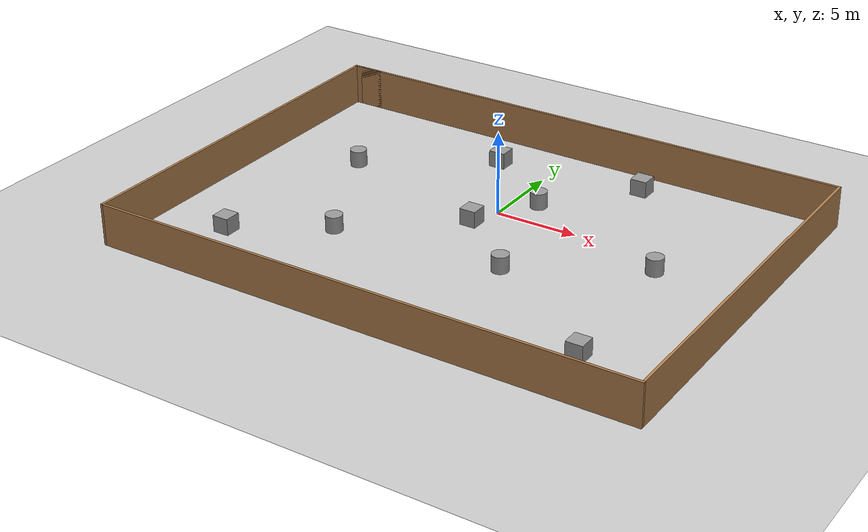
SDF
<sdf version="1.7">
 <world name="default">
  <physics type="ode">
   <max_step_size>0.001</max_step_size>
   <real_time_update_rate>1000</real_time_update_rate>
   <real_time_factor>1</real_time_factor>
  </physics>
  <light name="sun" type="directional">
   <pose>0 0 10 0 -0 0</pose>
   <diffuse>0.8 0.8 0.8 1</diffuse>
   <specular>0.2 0.2 0.2 1</specular>
   <attenuation>
    <range>1000</range>
    <constant>0.9</constant>
    <linear>0.01</linear>
    <quadratic>0.001</quadratic>
   </attenuation>
   <direction>-0.5 0.1 -0.9</direction>
   <spot><inner_angle>0</inner_angle><outer_angle>0</outer_angle><falloff>0</falloff></spot>
  </light>
  <model name="ground_plane">
   <static>1</static>
   <link name="link">
    <collision name="collision">
     <geometry><plane><normal>0 0 1</normal><size>100 100</size></plane></geometry>
     <surface>
      <contact><collide_bitmask>65535</collide_bitmask></contact>
      <friction><ode><mu>100</mu><mu2>50</mu2></ode></friction>
     </surface>
    </collision>
    <visual name="visual">
     <cast_shadows>0</cast_shadows>
     <geometry><plane><normal>0 0 1</normal><size>100 100</size></plane></geometry>
     <material>
      <script><uri>file://media/materials/scripts/gazebo.material</uri><name>Gazebo/Grey</name></script>
     </material>
    </visual>
   </link>
  </model>
  <gravity>0 0 -9.8</gravity>
  <magnetic_field>6e-06 2.3e-05 -4.2e-05</magnetic_field>
  <atmosphere type="adiabatic"/>
  <scene><ambient>0.4 0.4 0.4 1</ambient><background>0.7 0.7 0.7 1</background><shadows>1</shadows></scene>
  <spherical_coordinates>
   <surface_model>EARTH_WGS84</surface_model>
   <latitude_deg>0</latitude_deg>
   <longitude_deg>0</longitude_deg>
   <elevation>0</elevation>
   <heading_deg>0</heading_deg>
  </spherical_coordinates>
  <model name="world">
   <pose>0.340299 -3.02178 0 0 -0 0</pose>
   <link name="Wall_11">
    <collision name="Wall_11_Collision">
     <geometry><box><size>32.5 0.15 2.5</size></box></geometry>
     <pose>0 0 1.25 0 -0 0</pose>
    </collision>
    <visual name="Wall_11_Visual">
     <pose>0 0 1.25 0 -0 0</pose>
     <geometry><box><size>32.5 0.15 2.5</size></box></geometry>
     <material>
      <script><uri>file://media/materials/scripts/gazebo.material</uri><name>Gazebo/Wood</name></script>
      <ambient>1 1 1 1</ambient>
     </material>
     <meta><layer>0</layer></meta>
    </visual>
    <pose>0.249999 11.675 0 0 -0 0</pose>
   </link>
   <link name="Wall_12">
    <collision name="Wall_12_Collision">
     <geometry><box><size>23.5 0.15 2.5</size></box></geometry>
     <pose>0 0 1.25 0 -0 0</pose>
    </collision>
    <visual name="Wall_12_Visual">
     <pose>0 0 1.25 0 -0 0</pose>
     <geometry><box><size>23.5 0.15 2.5</size></box></geometry>
     <material>
      <script><uri>file://media/materials/scripts/gazebo.material</uri><name>Gazebo/Wood</name></script>
      <ambient>1 1 1 1</ambient>
     </material>
     <meta><layer>0</layer></meta>
    </visual>
    <pose>16.425 0 0 0 -0 -1.5708</pose>
   </link>
   <link name="Wall_13">
    <collision name="Wall_13_Collision">
     <geometry><box><size>33 0.15 2.5</size></box></geometry>
     <pose>0 0 1.25 0 -0 0</pose>
    </collision>
    <visual name="Wall_13_Visual">
     <pose>0 0 1.25 0 -0 0</pose>
     <geometry><box><size>33 0.15 2.5</size></box></geometry>
     <material>
      <script><uri>file://media/materials/scripts/gazebo.material</uri><name>Gazebo/Wood</name></script>
      <ambient>1 1 1 1</ambient>
     </material>
     <meta><layer>0</layer></meta>
    </visual>
    <pose>-1e-06 -11.675 0 0 -0 3.14159</pose>
   </link>
   <link name="Wall_14">
    <collision name="Wall_14_Collision">
     <geometry><box><size>23.5 0.15 2.5</size></box></geometry>
     <pose>0 0 1.25 0 -0 0</pose>
    </collision>
    <visual name="Wall_14_Visual">
     <pose>0 0 1.25 0 -0 0</pose>
     <geometry><box><size>23.5 0.15 2.5</size></box></geometry>
     <material>
      <script><uri>file://media/materials/scripts/gazebo.material</uri><name>Gazebo/Wood</name></script>
      <ambient>1 1 1 1</ambient>
     </material>
     <meta><layer>0</layer></meta>
    </visual>
    <pose>-16.425 0 0 0 -0 1.5708</pose>
   </link>
   <link name="Wall_15">
    <collision name="Wall_15_Collision">
     <geometry><box><size>2 0.15 2.5</size></box></geometry>
     <pose>0 0 1.25 0 -0 0</pose>
    </collision>
    <visual name="Wall_15_Visual">
     <pose>0 0 1.25 0 -0 0</pose>
     <geometry><box><size>2 0.15 2.5</size></box></geometry>
     <material>
      <script><uri>file://media/materials/scripts/gazebo.material</uri><name>Gazebo/Wood</name></script>
      <ambient>1 1 1 1</ambient>
     </material>
     <meta><layer>0</layer></meta>
    </visual>
    <pose>-15.5 11.675 0 0 -0 0</pose>
   </link>
   <static>1</static>
  </model>
  <model name="unit_cylinder">
   <pose>1.51123 1.94132 0.499992 -3e-06 4e-06 0</pose>
   <link name="link">
    <inertial>
     <mass>1</mass>
     <inertia><ixx>0.145833</ixx><ixy>0</ixy><ixz>0</ixz><iyy>0.145833</iyy><iyz>0</iyz><izz>0.125</izz></inertia>
    </inertial>
    <collision name="collision">
     <geometry><cylinder><radius>0.5</radius><length>1</length></cylinder></geometry>
    </collision>
    <visual name="visual">
     <geometry><cylinder><radius>0.5</radius><length>1</length></cylinder></geometry>
     <material>
      <script><name>Gazebo/Grey</name><uri>file://media/materials/scripts/gazebo.material</uri></script>
     </material>
    </visual>
   </link>
  </model>
  <model name="unit_cylinder_0">
   <pose>3.58089 -5.57947 0.499992 -3e-06 -4e-06 -0</pose>
   <link name="link">
    <inertial>
     <mass>1</mass>
     <inertia><ixx>0.145833</ixx><ixy>0</ixy><ixz>0</ixz><iyy>0.145833</iyy><iyz>0</iyz><izz>0.125</izz></inertia>
    </inertial>
    <collision name="collision">
     <geometry><cylinder><radius>0.5</radius><length>1</length></cylinder></geometry>
    </collision>
    <visual name="visual">
     <geometry><cylinder><radius>0.5</radius><length>1</length></cylinder></geometry>
     <material>
      <script><name>Gazebo/Grey</name><uri>file://media/materials/scripts/gazebo.material</uri></script>
     </material>
    </visual>
   </link>
  </model>
  <model name="unit_cylinder_1">
   <pose>-6.60459 -6.62 0.499998 3e-06 4e-06 -0</pose>
   <link name="link">
    <inertial>
     <mass>1</mass>
     <inertia><ixx>0.145833</ixx><ixy>0</ixy><ixz>0</ixz><iyy>0.145833</iyy><iyz>0</iyz><izz>0.125</izz></inertia>
    </inertial>
    <collision name="collision">
     <geometry><cylinder><radius>0.5</radius><length>1</length></cylinder></geometry>
    </collision>
    <visual name="visual">
     <geometry><cylinder><radius>0.5</radius><length>1</length></cylinder></geometry>
     <material>
      <script><name>Gazebo/Grey</name><uri>file://media/materials/scripts/gazebo.material</uri></script>
     </material>
    </visual>
   </link>
  </model>
  <model name="unit_cylinder_2">
   <pose>-10.4412 0.985459 0.499997 3e-06 3e-06 0</pose>
   <link name="link">
    <inertial>
     <mass>1</mass>
     <inertia><ixx>0.145833</ixx><ixy>0</ixy><ixz>0</ixz><iyy>0.145833</iyy><iyz>0</iyz><izz>0.125</izz></inertia>
    </inertial>
    <collision name="collision">
     <geometry><cylinder><radius>0.5</radius><length>1</length></cylinder></geometry>
    </collision>
    <visual name="visual">
     <geometry><cylinder><radius>0.5</radius><length>1</length></cylinder></geometry>
     <material>
      <script><name>Gazebo/Grey</name><uri>file://media/materials/scripts/gazebo.material</uri></script>
     </material>
    </visual>
   </link>
  </model>
  <model name="unit_cylinder_3">
   <pose>10.6475 -1.43968 0.499993 -3e-06 -4e-06 -0</pose>
   <link name="link">
    <inertial>
     <mass>1</mass>
     <inertia><ixx>0.145833</ixx><ixy>0</ixy><ixz>0</ixz><iyy>0.145833</iyy><iyz>0</iyz><izz>0.125</izz></inertia>
    </inertial>
    <collision name="collision">
     <geometry><cylinder><radius>0.5</radius><length>1</length></cylinder></geometry>
    </collision>
    <visual name="visual">
     <geometry><cylinder><radius>0.5</radius><length>1</length></cylinder></geometry>
     <material>
      <script><name>Gazebo/Grey</name><uri>file://media/materials/scripts/gazebo.material</uri></script>
     </material>
    </visual>
   </link>
  </model>
  <model name="unit_box">
   <pose>-0.622059 -1.79259 0.499995 -1e-05 -0 0</pose>
   <link name="link">
    <inertial>
     <mass>1</mass>
     <inertia>
      <ixx>0.166667</ixx>
      <ixy>0</ixy>
      <ixz>0</ixz>
      <iyy>0.166667</iyy>
      <iyz>0</iyz>
      <izz>0.166667</izz>
     </inertia>
    </inertial>
    <collision name="collision"><geometry><box><size>1 1 1</size></box></geometry></collision>
    <visual name="visual">
     <geometry><box><size>1 1 1</size></box></geometry>
     <material>
      <script><name>Gazebo/Grey</name><uri>file://media/materials/scripts/gazebo.material</uri></script>
     </material>
    </visual>
   </link>
  </model>
  <model name="unit_box_0">
   <pose>-3.2346 5.52146 0.499995 0 1e-05 0</pose>
   <link name="link">
    <inertial>
     <mass>1</mass>
     <inertia>
      <ixx>0.166667</ixx>
      <ixy>0</ixy>
      <ixz>0</ixz>
      <iyy>0.166667</iyy>
      <iyz>0</iyz>
      <izz>0.166667</izz>
     </inertia>
    </inertial>
    <collision name="collision"><geometry><box><size>1 1 1</size></box></geometry></collision>
    <visual name="visual">
     <geometry><box><size>1 1 1</size></box></geometry>
     <material>
      <script><name>Gazebo/Grey</name><uri>file://media/materials/scripts/gazebo.material</uri></script>
     </material>
    </visual>
   </link>
  </model>
  <model name="unit_box_1">
   <pose>5.66692 6.64196 0.499995 0 1e-05 0</pose>
   <link name="link">
    <inertial>
     <mass>1</mass>
     <inertia>
      <ixx>0.166667</ixx>
      <ixy>0</ixy>
      <ixz>0</ixz>
      <iyy>0.166667</iyy>
      <iyz>0</iyz>
      <izz>0.166667</izz>
     </inertia>
    </inertial>
    <collision name="collision"><geometry><box><size>1 1 1</size></box></geometry></collision>
    <visual name="visual">
     <geometry><box><size>1 1 1</size></box></geometry>
     <material>
      <script><name>Gazebo/Grey</name><uri>file://media/materials/scripts/gazebo.material</uri></script>
     </material>
    </visual>
   </link>
  </model>
  <model name="unit_box_2">
   <pose>11.3568 -10.9064 0.499995 -1e-05 -0 0</pose>
   <link name="link">
    <inertial>
     <mass>1</mass>
     <inertia>
      <ixx>0.166667</ixx>
      <ixy>0</ixy>
      <ixz>0</ixz>
      <iyy>0.166667</iyy>
      <iyz>0</iyz>
      <izz>0.166667</izz>
     </inertia>
    </inertial>
    <collision name="collision"><geometry><box><size>1 1 1</size></box></geometry></collision>
    <visual name="visual">
     <geometry><box><size>1 1 1</size></box></geometry>
     <material>
      <script><name>Gazebo/Grey</name><uri>file://media/materials/scripts/gazebo.material</uri></script>
     </material>
    </visual>
   </link>
  </model>
  <model name="unit_box_3">
   <pose>-11.6619 -9.84296 0.5 0 -0 0</pose>
   <link name="link">
    <inertial>
     <mass>1</mass>
     <inertia>
      <ixx>0.166667</ixx>
      <ixy>0</ixy>
      <ixz>0</ixz>
      <iyy>0.166667</iyy>
      <iyz>0</iyz>
      <izz>0.166667</izz>
     </inertia>
    </inertial>
    <collision name="collision"><geometry><box><size>1 1 1</size></box></geometry></collision>
    <visual name="visual">
     <geometry><box><size>1 1 1</size></box></geometry>
     <material>
      <script><name>Gazebo/Grey</name><uri>file://media/materials/scripts/gazebo.material</uri></script>
     </material>
    </visual>
   </link>
  </model>
 </world>
</sdf>
